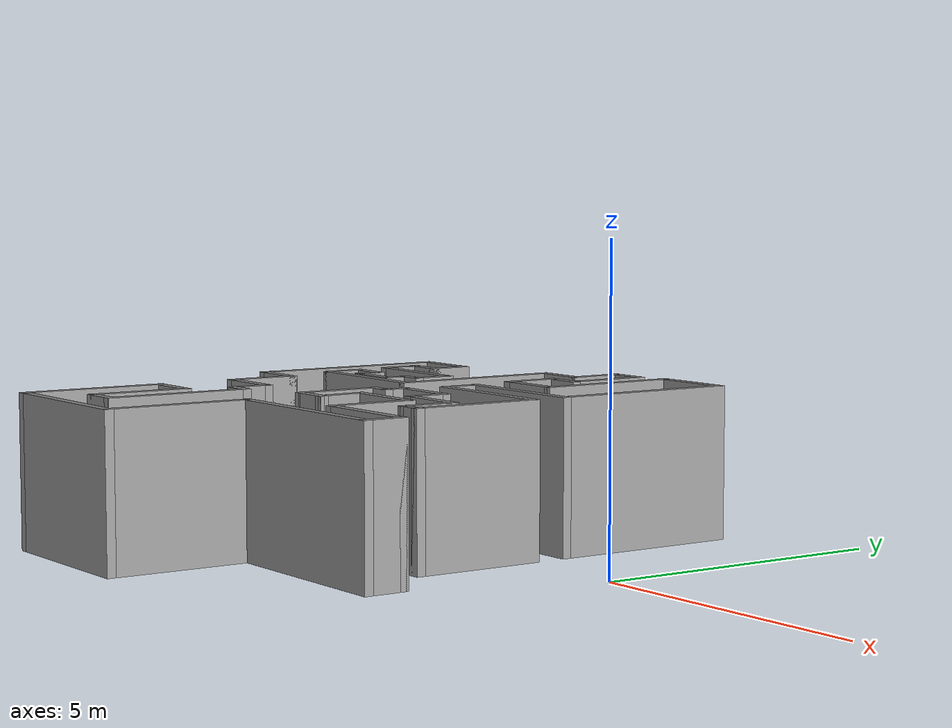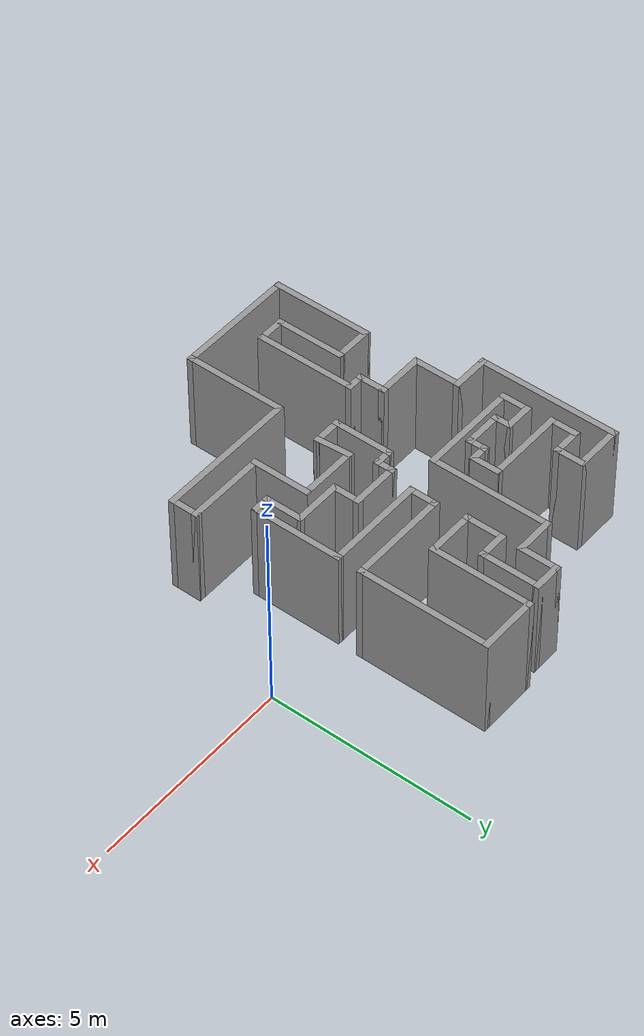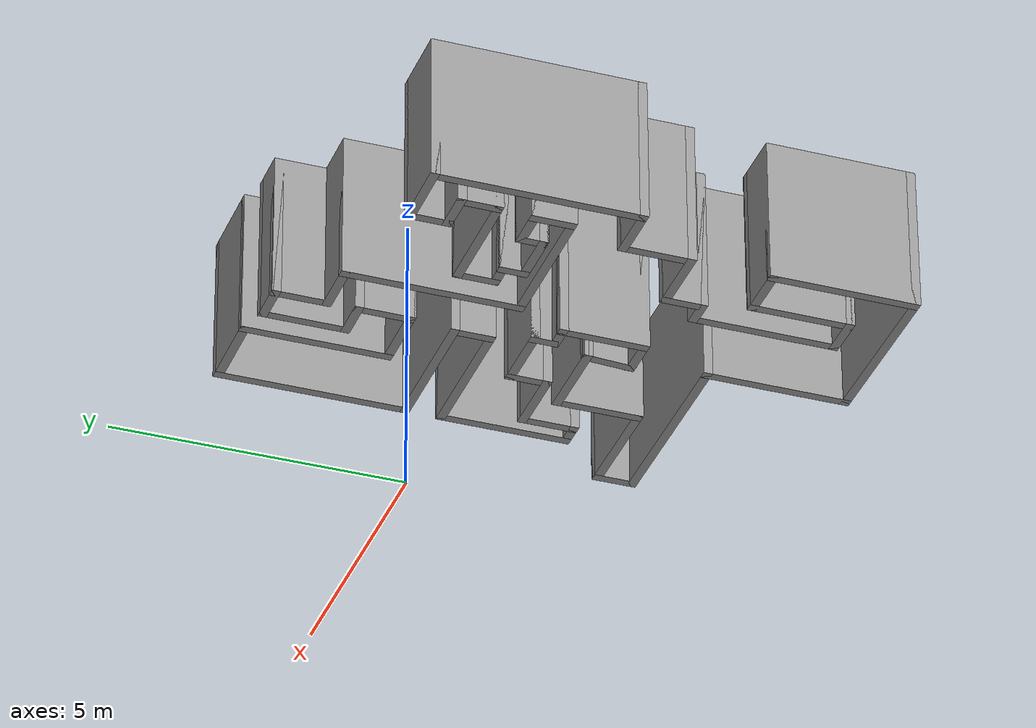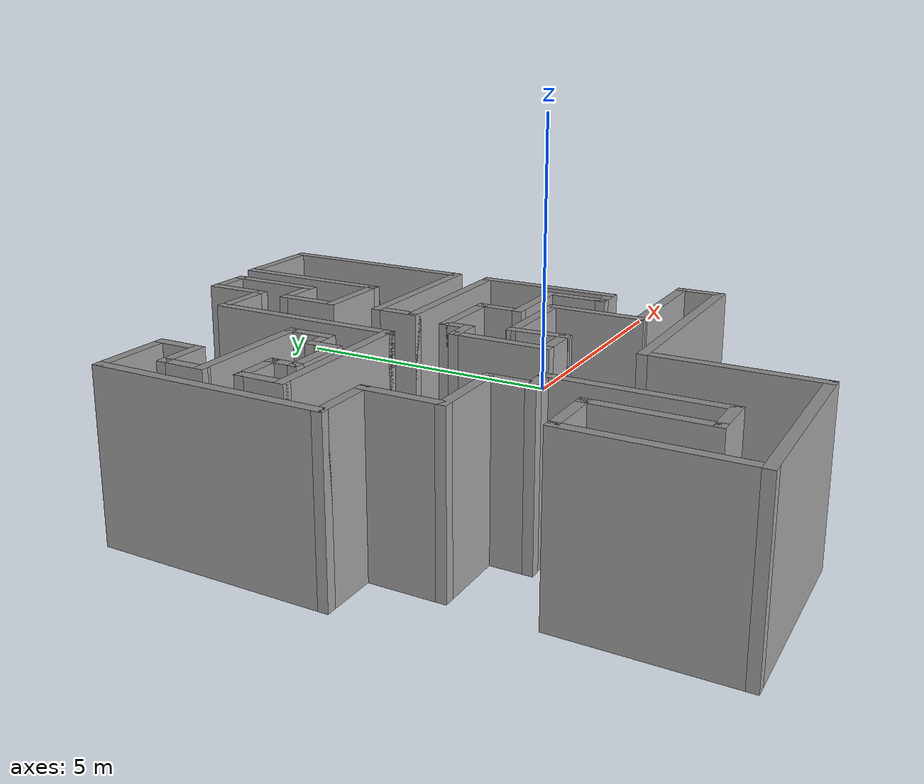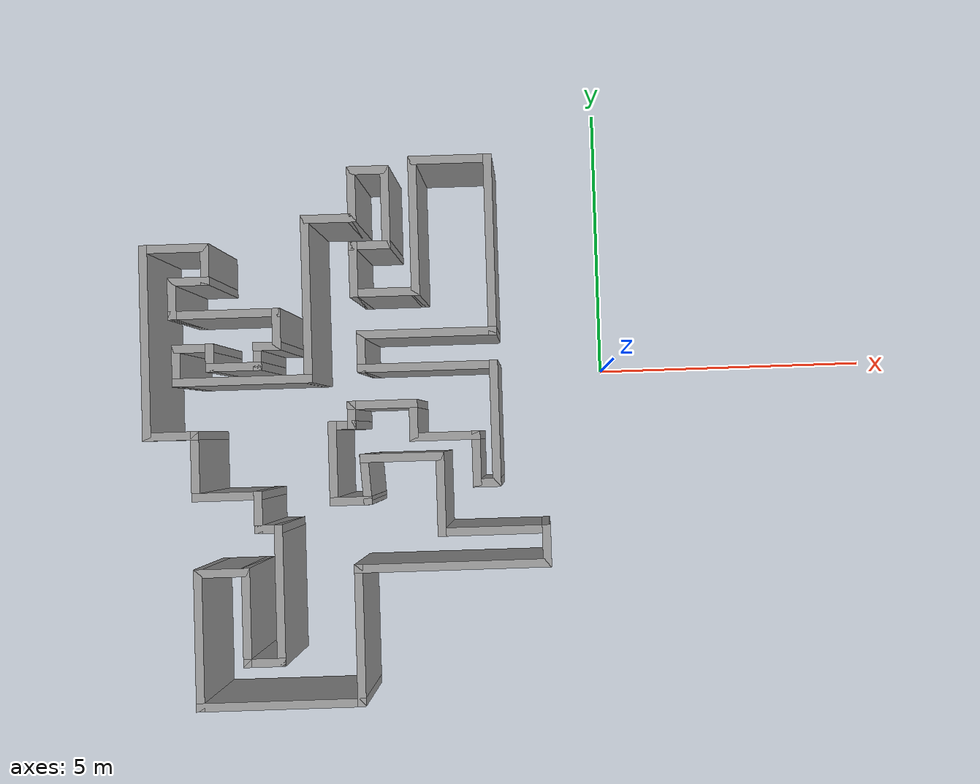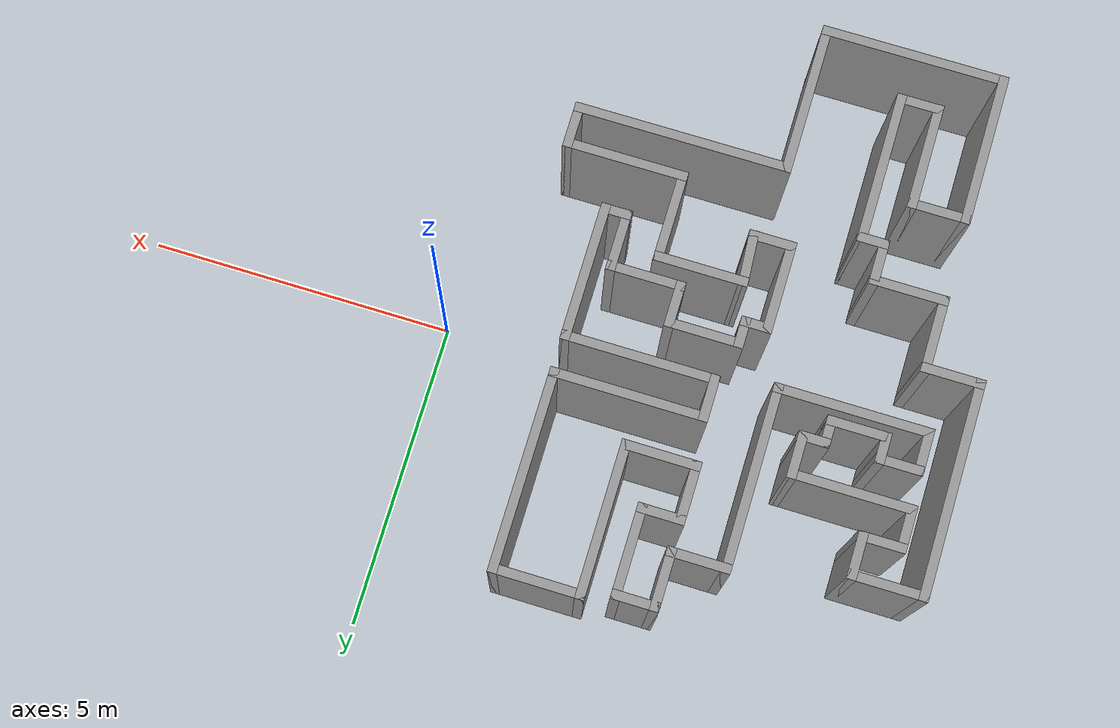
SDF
<?xml version='1.0'?>
<sdf version='1.6'>
  <model name='maze'>
    <pose frame=''>-4.685 -1.01 0 0 -0 0</pose>
    <link name='Wall_0'>
      <collision name='Wall_0_Collision'>
        <geometry>
          <box>
            <size>1.5 0.15 2.5</size>
          </box>
        </geometry>
        <pose frame=''>0 0 1.25 0 -0 0</pose>
      </collision>
      <visual name='Wall_0_Visual'>
        <pose frame=''>0 0 1.25 0 -0 0</pose>
        <geometry>
          <box>
            <size>1.5 0.15 2.5</size>
          </box>
        </geometry>
        <material>
          <script>
            <uri>file://media/materials/scripts/gazebo.material</uri>
            <name>Gazebo/Grey</name>
          </script>
          <ambient>1 1 1 1</ambient>
        </material>
        <meta>
          <layer>0</layer>
        </meta>
      </visual>
      <pose frame=''>1 -0.5 0 0 -0 0</pose>
    </link>
    <link name='Wall_1'>
      <collision name='Wall_1_Collision'>
        <geometry>
          <box>
            <size>1.5 0.15 2.5</size>
          </box>
        </geometry>
        <pose frame=''>0 0 1.25 0 -0 0</pose>
      </collision>
      <visual name='Wall_1_Visual'>
        <pose frame=''>0 0 1.25 0 -0 0</pose>
        <geometry>
          <box>
            <size>1.5 0.15 2.5</size>
          </box>
        </geometry>
        <material>
          <script>
            <uri>file://media/materials/scripts/gazebo.material</uri>
            <name>Gazebo/Grey</name>
          </script>
          <ambient>1 1 1 1</ambient>
        </material>
        <meta>
          <layer>0</layer>
        </meta>
      </visual>
      <pose frame=''>1.675 -1.175 0 0 -0 -1.5708</pose>
    </link>
    <link name='Wall_10'>
      <collision name='Wall_10_Collision'>
        <geometry>
          <box>
            <size>0.75 0.15 2.5</size>
          </box>
        </geometry>
        <pose frame=''>0 0 1.25 0 -0 0</pose>
      </collision>
      <visual name='Wall_10_Visual'>
        <pose frame=''>0 0 1.25 0 -0 0</pose>
        <geometry>
          <box>
            <size>0.75 0.15 2.5</size>
          </box>
        </geometry>
        <material>
          <script>
            <uri>file://media/materials/scripts/gazebo.material</uri>
            <name>Gazebo/Grey</name>
          </script>
          <ambient>1 1 1 1</ambient>
        </material>
        <meta>
          <layer>0</layer>
        </meta>
      </visual>
      <pose frame=''>-1.525 -4.05 0 0 -0 0</pose>
    </link>
    <link name='Wall_11'>
      <collision name='Wall_11_Collision'>
        <geometry>
          <box>
            <size>2.5 0.15 2.5</size>
          </box>
        </geometry>
        <pose frame=''>0 0 1.25 0 -0 0</pose>
      </collision>
      <visual name='Wall_11_Visual'>
        <pose frame=''>0 0 1.25 0 -0 0</pose>
        <geometry>
          <box>
            <size>2.5 0.15 2.5</size>
          </box>
        </geometry>
        <material>
          <script>
            <uri>file://media/materials/scripts/gazebo.material</uri>
            <name>Gazebo/Grey</name>
          </script>
          <ambient>1 1 1 1</ambient>
        </material>
        <meta>
          <layer>0</layer>
        </meta>
      </visual>
      <pose frame=''>-1.225 -2.875 0 0 -0 1.5708</pose>
    </link>
    <link name='Wall_12'>
      <collision name='Wall_12_Collision'>
        <geometry>
          <box>
            <size>0.5 0.15 2.5</size>
          </box>
        </geometry>
        <pose frame=''>0 0 1.25 0 -0 0</pose>
      </collision>
      <visual name='Wall_12_Visual'>
        <pose frame=''>0 0 1.25 0 -0 0</pose>
        <geometry>
          <box>
            <size>0.5 0.15 2.5</size>
          </box>
        </geometry>
        <material>
          <script>
            <uri>file://media/materials/scripts/gazebo.material</uri>
            <name>Gazebo/Grey</name>
          </script>
          <ambient>1 1 1 1</ambient>
        </material>
        <meta>
          <layer>0</layer>
        </meta>
      </visual>
      <pose frame=''>-1.4 -1.7 0 0 -0 3.14159</pose>
    </link>
    <link name='Wall_13'>
      <collision name='Wall_13_Collision'>
        <geometry>
          <box>
            <size>0.75 0.15 2.5</size>
          </box>
        </geometry>
        <pose frame=''>0 0 1.25 0 -0 0</pose>
      </collision>
      <visual name='Wall_13_Visual'>
        <pose frame=''>0 0 1.25 0 -0 0</pose>
        <geometry>
          <box>
            <size>0.75 0.15 2.5</size>
          </box>
        </geometry>
        <material>
          <script>
            <uri>file://media/materials/scripts/gazebo.material</uri>
            <name>Gazebo/Grey</name>
          </script>
          <ambient>1 1 1 1</ambient>
        </material>
        <meta>
          <layer>0</layer>
        </meta>
      </visual>
      <pose frame=''>-1.575 -1.4 0 0 -0 1.5708</pose>
    </link>
    <link name='Wall_14'>
      <collision name='Wall_14_Collision'>
        <geometry>
          <box>
            <size>1.25 0.15 2.5</size>
          </box>
        </geometry>
        <pose frame=''>0 0 1.25 0 -0 0</pose>
      </collision>
      <visual name='Wall_14_Visual'>
        <pose frame=''>0 0 1.25 0 -0 0</pose>
        <geometry>
          <box>
            <size>1.25 0.15 2.5</size>
          </box>
        </geometry>
        <material>
          <script>
            <uri>file://media/materials/scripts/gazebo.material</uri>
            <name>Gazebo/Grey</name>
          </script>
          <ambient>1 1 1 1</ambient>
        </material>
        <meta>
          <layer>0</layer>
        </meta>
      </visual>
      <pose frame=''>-2.125 -1.1 0 0 -0 3.14159</pose>
    </link>
    <link name='Wall_15'>
      <collision name='Wall_15_Collision'>
        <geometry>
          <box>
            <size>1.25 0.15 2.5</size>
          </box>
        </geometry>
        <pose frame=''>0 0 1.25 0 -0 0</pose>
      </collision>
      <visual name='Wall_15_Visual'>
        <pose frame=''>0 0 1.25 0 -0 0</pose>
        <geometry>
          <box>
            <size>1.25 0.15 2.5</size>
          </box>
        </geometry>
        <material>
          <script>
            <uri>file://media/materials/scripts/gazebo.material</uri>
            <name>Gazebo/Grey</name>
          </script>
          <ambient>1 1 1 1</ambient>
        </material>
        <meta>
          <layer>0</layer>
        </meta>
      </visual>
      <pose frame=''>-2.675 -0.55 0 0 -0 1.5708</pose>
    </link>
    <link name='Wall_16'>
      <collision name='Wall_16_Collision'>
        <geometry>
          <box>
            <size>1 0.15 2.5</size>
          </box>
        </geometry>
        <pose frame=''>0 0 1.25 0 -0 0</pose>
      </collision>
      <visual name='Wall_16_Visual'>
        <pose frame=''>0 0 1.25 0 -0 0</pose>
        <geometry>
          <box>
            <size>1 0.15 2.5</size>
          </box>
        </geometry>
        <material>
          <script>
            <uri>file://media/materials/scripts/gazebo.material</uri>
            <name>Gazebo/Grey</name>
          </script>
          <ambient>1 1 1 1</ambient>
        </material>
        <meta>
          <layer>0</layer>
        </meta>
      </visual>
      <pose frame=''>-3.1 0 0 0 -0 3.14159</pose>
    </link>
    <link name='Wall_17'>
      <collision name='Wall_17_Collision'>
        <geometry>
          <box>
            <size>3.5 0.15 2.5</size>
          </box>
        </geometry>
        <pose frame=''>0 0 1.25 0 -0 0</pose>
      </collision>
      <visual name='Wall_17_Visual'>
        <pose frame=''>0 0 1.25 0 -0 0</pose>
        <geometry>
          <box>
            <size>3.5 0.15 2.5</size>
          </box>
        </geometry>
        <material>
          <script>
            <uri>file://media/materials/scripts/gazebo.material</uri>
            <name>Gazebo/Grey</name>
          </script>
          <ambient>1 1 1 1</ambient>
        </material>
        <meta>
          <layer>0</layer>
        </meta>
      </visual>
      <pose frame=''>-3.525 1.675 0 0 -0 1.5708</pose>
    </link>
    <link name='Wall_18'>
      <collision name='Wall_18_Collision'>
        <geometry>
          <box>
            <size>1.25 0.15 2.5</size>
          </box>
        </geometry>
        <pose frame=''>0 0 1.25 0 -0 0</pose>
      </collision>
      <visual name='Wall_18_Visual'>
        <pose frame=''>0 0 1.25 0 -0 0</pose>
        <geometry>
          <box>
            <size>1.25 0.15 2.5</size>
          </box>
        </geometry>
        <material>
          <script>
            <uri>file://media/materials/scripts/gazebo.material</uri>
            <name>Gazebo/Grey</name>
          </script>
          <ambient>1 1 1 1</ambient>
        </material>
        <meta>
          <layer>0</layer>
        </meta>
      </visual>
      <pose frame=''>-2.975 3.35 0 0 -0 0</pose>
    </link>
    <link name='Wall_19'>
      <collision name='Wall_19_Collision'>
        <geometry>
          <box>
            <size>0.75 0.15 2.5</size>
          </box>
        </geometry>
        <pose frame=''>0 0 1.25 0 -0 0</pose>
      </collision>
      <visual name='Wall_19_Visual'>
        <pose frame=''>0 0 1.25 0 -0 0</pose>
        <geometry>
          <box>
            <size>0.75 0.15 2.5</size>
          </box>
        </geometry>
        <material>
          <script>
            <uri>file://media/materials/scripts/gazebo.material</uri>
            <name>Gazebo/Grey</name>
          </script>
          <ambient>1 1 1 1</ambient>
        </material>
        <meta>
          <layer>0</layer>
        </meta>
      </visual>
      <pose frame=''>-2.425 3.05 0 0 -0 -1.5708</pose>
    </link>
    <link name='Wall_2'>
      <collision name='Wall_2_Collision'>
        <geometry>
          <box>
            <size>2 0.15 2.5</size>
          </box>
        </geometry>
        <pose frame=''>0 0 1.25 0 -0 0</pose>
      </collision>
      <visual name='Wall_2_Visual'>
        <pose frame=''>0 0 1.25 0 -0 0</pose>
        <geometry>
          <box>
            <size>2 0.15 2.5</size>
          </box>
        </geometry>
        <material>
          <script>
            <uri>file://media/materials/scripts/gazebo.material</uri>
            <name>Gazebo/Grey</name>
          </script>
          <ambient>1 1 1 1</ambient>
        </material>
        <meta>
          <layer>0</layer>
        </meta>
      </visual>
      <pose frame=''>2.6 -1.85 0 0 -0 0</pose>
    </link>
    <link name='Wall_20'>
      <collision name='Wall_20_Collision'>
        <geometry>
          <box>
            <size>0.75 0.15 2.5</size>
          </box>
        </geometry>
        <pose frame=''>0 0 1.25 0 -0 0</pose>
      </collision>
      <visual name='Wall_20_Visual'>
        <pose frame=''>0 0 1.25 0 -0 0</pose>
        <geometry>
          <box>
            <size>0.75 0.15 2.5</size>
          </box>
        </geometry>
        <material>
          <script>
            <uri>file://media/materials/scripts/gazebo.material</uri>
            <name>Gazebo/Grey</name>
          </script>
          <ambient>1 1 1 1</ambient>
        </material>
        <meta>
          <layer>0</layer>
        </meta>
      </visual>
      <pose frame=''>-2.725 2.75 0 0 -0 3.14159</pose>
    </link>
    <link name='Wall_21'>
      <collision name='Wall_21_Collision'>
        <geometry>
          <box>
            <size>0.75 0.15 2.5</size>
          </box>
        </geometry>
        <pose frame=''>0 0 1.25 0 -0 0</pose>
      </collision>
      <visual name='Wall_21_Visual'>
        <pose frame=''>0 0 1.25 0 -0 0</pose>
        <geometry>
          <box>
            <size>0.75 0.15 2.5</size>
          </box>
        </geometry>
        <material>
          <script>
            <uri>file://media/materials/scripts/gazebo.material</uri>
            <name>Gazebo/Grey</name>
          </script>
          <ambient>1 1 1 1</ambient>
        </material>
        <meta>
          <layer>0</layer>
        </meta>
      </visual>
      <pose frame=''>-3.025 2.45 0 0 -0 -1.5708</pose>
    </link>
    <link name='Wall_22'>
      <collision name='Wall_22_Collision'>
        <geometry>
          <box>
            <size>2 0.15 2.5</size>
          </box>
        </geometry>
        <pose frame=''>0 0 1.25 0 -0 0</pose>
      </collision>
      <visual name='Wall_22_Visual'>
        <pose frame=''>0 0 1.25 0 -0 0</pose>
        <geometry>
          <box>
            <size>2 0.15 2.5</size>
          </box>
        </geometry>
        <material>
          <script>
            <uri>file://media/materials/scripts/gazebo.material</uri>
            <name>Gazebo/Grey</name>
          </script>
          <ambient>1 1 1 1</ambient>
        </material>
        <meta>
          <layer>0</layer>
        </meta>
      </visual>
      <pose frame=''>-2.1 2.15 0 0 -0 0</pose>
    </link>
    <link name='Wall_23'>
      <collision name='Wall_23_Collision'>
        <geometry>
          <box>
            <size>0.75 0.15 2.5</size>
          </box>
        </geometry>
        <pose frame=''>0 0 1.25 0 -0 0</pose>
      </collision>
      <visual name='Wall_23_Visual'>
        <pose frame=''>0 0 1.25 0 -0 0</pose>
        <geometry>
          <box>
            <size>0.75 0.15 2.5</size>
          </box>
        </geometry>
        <material>
          <script>
            <uri>file://media/materials/scripts/gazebo.material</uri>
            <name>Gazebo/Grey</name>
          </script>
          <ambient>1 1 1 1</ambient>
        </material>
        <meta>
          <layer>0</layer>
        </meta>
      </visual>
      <pose frame=''>-1.175 1.85 0 0 -0 -1.5708</pose>
    </link>
    <link name='Wall_24'>
      <collision name='Wall_24_Collision'>
        <geometry>
          <box>
            <size>0.5 0.15 2.5</size>
          </box>
        </geometry>
        <pose frame=''>0 0 1.25 0 -0 0</pose>
      </collision>
      <visual name='Wall_24_Visual'>
        <pose frame=''>0 0 1.25 0 -0 0</pose>
        <geometry>
          <box>
            <size>0.5 0.15 2.5</size>
          </box>
        </geometry>
        <material>
          <script>
            <uri>file://media/materials/scripts/gazebo.material</uri>
            <name>Gazebo/Grey</name>
          </script>
          <ambient>1 1 1 1</ambient>
        </material>
        <meta>
          <layer>0</layer>
        </meta>
      </visual>
      <pose frame=''>-1.35 1.55 0 0 -0 3.14159</pose>
    </link>
    <link name='Wall_25'>
      <collision name='Wall_25_Collision'>
        <geometry>
          <box>
            <size>0.5 0.15 2.5</size>
          </box>
        </geometry>
        <pose frame=''>0 0 1.25 0 -0 0</pose>
      </collision>
      <visual name='Wall_25_Visual'>
        <pose frame=''>0 0 1.25 0 -0 0</pose>
        <geometry>
          <box>
            <size>0.5 0.15 2.5</size>
          </box>
        </geometry>
        <material>
          <script>
            <uri>file://media/materials/scripts/gazebo.material</uri>
            <name>Gazebo/Grey</name>
          </script>
          <ambient>1 1 1 1</ambient>
        </material>
        <meta>
          <layer>0</layer>
        </meta>
      </visual>
      <pose frame=''>-1.525 1.375 0 0 -0 -1.5708</pose>
    </link>
    <link name='Wall_26'>
      <collision name='Wall_26_Collision'>
        <geometry>
          <box>
            <size>1 0.15 2.5</size>
          </box>
        </geometry>
        <pose frame=''>0 0 1.25 0 -0 0</pose>
      </collision>
      <visual name='Wall_26_Visual'>
        <pose frame=''>0 0 1.25 0 -0 0</pose>
        <geometry>
          <box>
            <size>1 0.15 2.5</size>
          </box>
        </geometry>
        <material>
          <script>
            <uri>file://media/materials/scripts/gazebo.material</uri>
            <name>Gazebo/Grey</name>
          </script>
          <ambient>1 1 1 1</ambient>
        </material>
        <meta>
          <layer>0</layer>
        </meta>
      </visual>
      <pose frame=''>-1.95 1.2 0 0 -0 3.14159</pose>
    </link>
    <link name='Wall_27'>
      <collision name='Wall_27_Collision'>
        <geometry>
          <box>
            <size>0.5 0.15 2.5</size>
          </box>
        </geometry>
        <pose frame=''>0 0 1.25 0 -0 0</pose>
      </collision>
      <visual name='Wall_27_Visual'>
        <pose frame=''>0 0 1.25 0 -0 0</pose>
        <geometry>
          <box>
            <size>0.5 0.15 2.5</size>
          </box>
        </geometry>
        <material>
          <script>
            <uri>file://media/materials/scripts/gazebo.material</uri>
            <name>Gazebo/Grey</name>
          </script>
          <ambient>1 1 1 1</ambient>
        </material>
        <meta>
          <layer>0</layer>
        </meta>
      </visual>
      <pose frame=''>-2.375 1.375 0 0 -0 1.5708</pose>
    </link>
    <link name='Wall_28'>
      <collision name='Wall_28_Collision'>
        <geometry>
          <box>
            <size>0.75 0.15 2.5</size>
          </box>
        </geometry>
        <pose frame=''>0 0 1.25 0 -0 0</pose>
      </collision>
      <visual name='Wall_28_Visual'>
        <pose frame=''>0 0 1.25 0 -0 0</pose>
        <geometry>
          <box>
            <size>0.75 0.15 2.5</size>
          </box>
        </geometry>
        <material>
          <script>
            <uri>file://media/materials/scripts/gazebo.material</uri>
            <name>Gazebo/Grey</name>
          </script>
          <ambient>1 1 1 1</ambient>
        </material>
        <meta>
          <layer>0</layer>
        </meta>
      </visual>
      <pose frame=''>-2.675 1.55 0 0 -0 3.14159</pose>
    </link>
    <link name='Wall_29'>
      <collision name='Wall_29_Collision'>
        <geometry>
          <box>
            <size>0.75 0.15 2.5</size>
          </box>
        </geometry>
        <pose frame=''>0 0 1.25 0 -0 0</pose>
      </collision>
      <visual name='Wall_29_Visual'>
        <pose frame=''>0 0 1.25 0 -0 0</pose>
        <geometry>
          <box>
            <size>0.75 0.15 2.5</size>
          </box>
        </geometry>
        <material>
          <script>
            <uri>file://media/materials/scripts/gazebo.material</uri>
            <name>Gazebo/Grey</name>
          </script>
          <ambient>1 1 1 1</ambient>
        </material>
        <meta>
          <layer>0</layer>
        </meta>
      </visual>
      <pose frame=''>-2.975 1.25 0 0 -0 -1.5708</pose>
    </link>
    <link name='Wall_3'>
      <collision name='Wall_3_Collision'>
        <geometry>
          <box>
            <size>0.75 0.15 2.5</size>
          </box>
        </geometry>
        <pose frame=''>0 0 1.25 0 -0 0</pose>
      </collision>
      <visual name='Wall_3_Visual'>
        <pose frame=''>0 0 1.25 0 -0 0</pose>
        <geometry>
          <box>
            <size>0.75 0.15 2.5</size>
          </box>
        </geometry>
        <material>
          <script>
            <uri>file://media/materials/scripts/gazebo.material</uri>
            <name>Gazebo/Grey</name>
          </script>
          <ambient>1 1 1 1</ambient>
        </material>
        <meta>
          <layer>0</layer>
        </meta>
      </visual>
      <pose frame=''>3.525 -2.15 0 0 -0 -1.5708</pose>
    </link>
    <link name='Wall_30'>
      <collision name='Wall_30_Collision'>
        <geometry>
          <box>
            <size>2.5 0.15 2.5</size>
          </box>
        </geometry>
        <pose frame=''>0 0 1.25 0 -0 0</pose>
      </collision>
      <visual name='Wall_30_Visual'>
        <pose frame=''>0 0 1.25 0 -0 0</pose>
        <geometry>
          <box>
            <size>2.5 0.15 2.5</size>
          </box>
        </geometry>
        <material>
          <script>
            <uri>file://media/materials/scripts/gazebo.material</uri>
            <name>Gazebo/Grey</name>
          </script>
          <ambient>1 1 1 1</ambient>
        </material>
        <meta>
          <layer>0</layer>
        </meta>
      </visual>
      <pose frame=''>-1.8 0.95 0 0 -0 0</pose>
    </link>
    <link name='Wall_31'>
      <collision name='Wall_31_Collision'>
        <geometry>
          <box>
            <size>3 0.15 2.5</size>
          </box>
        </geometry>
        <pose frame=''>0 0 1.25 0 -0 0</pose>
      </collision>
      <visual name='Wall_31_Visual'>
        <pose frame=''>0 0 1.25 0 -0 0</pose>
        <geometry>
          <box>
            <size>3 0.15 2.5</size>
          </box>
        </geometry>
        <material>
          <script>
            <uri>file://media/materials/scripts/gazebo.material</uri>
            <name>Gazebo/Grey</name>
          </script>
          <ambient>1 1 1 1</ambient>
        </material>
        <meta>
          <layer>0</layer>
        </meta>
      </visual>
      <pose frame=''>-0.625 2.375 0 0 -0 1.5708</pose>
    </link>
    <link name='Wall_32'>
      <collision name='Wall_32_Collision'>
        <geometry>
          <box>
            <size>1 0.15 2.5</size>
          </box>
        </geometry>
        <pose frame=''>0 0 1.25 0 -0 0</pose>
      </collision>
      <visual name='Wall_32_Visual'>
        <pose frame=''>0 0 1.25 0 -0 0</pose>
        <geometry>
          <box>
            <size>1 0.15 2.5</size>
          </box>
        </geometry>
        <material>
          <script>
            <uri>file://media/materials/scripts/gazebo.material</uri>
            <name>Gazebo/Grey</name>
          </script>
          <ambient>1 1 1 1</ambient>
        </material>
        <meta>
          <layer>0</layer>
        </meta>
      </visual>
      <pose frame=''>-0.2 3.8 0 0 -0 0</pose>
    </link>
    <link name='Wall_33'>
      <collision name='Wall_33_Collision'>
        <geometry>
          <box>
            <size>1 0.15 2.5</size>
          </box>
        </geometry>
        <pose frame=''>0 0 1.25 0 -0 0</pose>
      </collision>
      <visual name='Wall_33_Visual'>
        <pose frame=''>0 0 1.25 0 -0 0</pose>
        <geometry>
          <box>
            <size>1 0.15 2.5</size>
          </box>
        </geometry>
        <material>
          <script>
            <uri>file://media/materials/scripts/gazebo.material</uri>
            <name>Gazebo/Grey</name>
          </script>
          <ambient>1 1 1 1</ambient>
        </material>
        <meta>
          <layer>0</layer>
        </meta>
      </visual>
      <pose frame=''>0.225 4.225 0 0 -0 1.5708</pose>
    </link>
    <link name='Wall_34'>
      <collision name='Wall_34_Collision'>
        <geometry>
          <box>
            <size>0.75 0.15 2.5</size>
          </box>
        </geometry>
        <pose frame=''>0 0 1.25 0 -0 0</pose>
      </collision>
      <visual name='Wall_34_Visual'>
        <pose frame=''>0 0 1.25 0 -0 0</pose>
        <geometry>
          <box>
            <size>0.75 0.15 2.5</size>
          </box>
        </geometry>
        <material>
          <script>
            <uri>file://media/materials/scripts/gazebo.material</uri>
            <name>Gazebo/Grey</name>
          </script>
          <ambient>1 1 1 1</ambient>
        </material>
        <meta>
          <layer>0</layer>
        </meta>
      </visual>
      <pose frame=''>0.525 4.65 0 0 -0 0</pose>
    </link>
    <link name='Wall_35'>
      <collision name='Wall_35_Collision'>
        <geometry>
          <box>
            <size>1.5 0.15 2.5</size>
          </box>
        </geometry>
        <pose frame=''>0 0 1.25 0 -0 0</pose>
      </collision>
      <visual name='Wall_35_Visual'>
        <pose frame=''>0 0 1.25 0 -0 0</pose>
        <geometry>
          <box>
            <size>1.5 0.15 2.5</size>
          </box>
        </geometry>
        <material>
          <script>
            <uri>file://media/materials/scripts/gazebo.material</uri>
            <name>Gazebo/Grey</name>
          </script>
          <ambient>1 1 1 1</ambient>
        </material>
        <meta>
          <layer>0</layer>
        </meta>
      </visual>
      <pose frame=''>0.825 3.975 0 0 -0 -1.5708</pose>
    </link>
    <link name='Wall_36'>
      <collision name='Wall_36_Collision'>
        <geometry>
          <box>
            <size>0.75 0.15 2.5</size>
          </box>
        </geometry>
        <pose frame=''>0 0 1.25 0 -0 0</pose>
      </collision>
      <visual name='Wall_36_Visual'>
        <pose frame=''>0 0 1.25 0 -0 0</pose>
        <geometry>
          <box>
            <size>0.75 0.15 2.5</size>
          </box>
        </geometry>
        <material>
          <script>
            <uri>file://media/materials/scripts/gazebo.material</uri>
            <name>Gazebo/Grey</name>
          </script>
          <ambient>1 1 1 1</ambient>
        </material>
        <meta>
          <layer>0</layer>
        </meta>
      </visual>
      <pose frame=''>0.525 3.3 0 0 -0 3.14159</pose>
    </link>
    <link name='Wall_37'>
      <collision name='Wall_37_Collision'>
        <geometry>
          <box>
            <size>1 0.15 2.5</size>
          </box>
        </geometry>
        <pose frame=''>0 0 1.25 0 -0 0</pose>
      </collision>
      <visual name='Wall_37_Visual'>
        <pose frame=''>0 0 1.25 0 -0 0</pose>
        <geometry>
          <box>
            <size>1 0.15 2.5</size>
          </box>
        </geometry>
        <material>
          <script>
            <uri>file://media/materials/scripts/gazebo.material</uri>
            <name>Gazebo/Grey</name>
          </script>
          <ambient>1 1 1 1</ambient>
        </material>
        <meta>
          <layer>0</layer>
        </meta>
      </visual>
      <pose frame=''>0.225 2.875 0 0 -0 -1.5708</pose>
    </link>
    <link name='Wall_38'>
      <collision name='Wall_38_Collision'>
        <geometry>
          <box>
            <size>1.25 0.15 2.5</size>
          </box>
        </geometry>
        <pose frame=''>0 0 1.25 0 -0 0</pose>
      </collision>
      <visual name='Wall_38_Visual'>
        <pose frame=''>0 0 1.25 0 -0 0</pose>
        <geometry>
          <box>
            <size>1.25 0.15 2.5</size>
          </box>
        </geometry>
        <material>
          <script>
            <uri>file://media/materials/scripts/gazebo.material</uri>
            <name>Gazebo/Grey</name>
          </script>
          <ambient>1 1 1 1</ambient>
        </material>
        <meta>
          <layer>0</layer>
        </meta>
      </visual>
      <pose frame=''>0.775 2.45 0 0 -0 0</pose>
    </link>
    <link name='Wall_39'>
      <collision name='Wall_39_Collision'>
        <geometry>
          <box>
            <size>2.5 0.15 2.5</size>
          </box>
        </geometry>
        <pose frame=''>0 0 1.25 0 -0 0</pose>
      </collision>
      <visual name='Wall_39_Visual'>
        <pose frame=''>0 0 1.25 0 -0 0</pose>
        <geometry>
          <box>
            <size>2.5 0.15 2.5</size>
          </box>
        </geometry>
        <material>
          <script>
            <uri>file://media/materials/scripts/gazebo.material</uri>
            <name>Gazebo/Grey</name>
          </script>
          <ambient>1 1 1 1</ambient>
        </material>
        <meta>
          <layer>0</layer>
        </meta>
      </visual>
      <pose frame=''>1.325 3.625 0 0 -0 1.5708</pose>
    </link>
    <link name='Wall_4'>
      <collision name='Wall_4_Collision'>
        <geometry>
          <box>
            <size>3.5 0.15 2.5</size>
          </box>
        </geometry>
        <pose frame=''>0 0 1.25 0 -0 0</pose>
      </collision>
      <visual name='Wall_4_Visual'>
        <pose frame=''>0 0 1.25 0 -0 0</pose>
        <geometry>
          <box>
            <size>3.5 0.15 2.5</size>
          </box>
        </geometry>
        <material>
          <script>
            <uri>file://media/materials/scripts/gazebo.material</uri>
            <name>Gazebo/Grey</name>
          </script>
          <ambient>1 1 1 1</ambient>
        </material>
        <meta>
          <layer>0</layer>
        </meta>
      </visual>
      <pose frame=''>1.85 -2.45 0 0 -0 3.14159</pose>
    </link>
    <link name='Wall_40'>
      <collision name='Wall_40_Collision'>
        <geometry>
          <box>
            <size>1.5 0.15 2.5</size>
          </box>
        </geometry>
        <pose frame=''>0 0 1.25 0 -0 0</pose>
      </collision>
      <visual name='Wall_40_Visual'>
        <pose frame=''>0 0 1.25 0 -0 0</pose>
        <geometry>
          <box>
            <size>1.5 0.15 2.5</size>
          </box>
        </geometry>
        <material>
          <script>
            <uri>file://media/materials/scripts/gazebo.material</uri>
            <name>Gazebo/Grey</name>
          </script>
          <ambient>1 1 1 1</ambient>
        </material>
        <meta>
          <layer>0</layer>
        </meta>
      </visual>
      <pose frame=''>2 4.8 0 0 -0 0</pose>
    </link>
    <link name='Wall_41'>
      <collision name='Wall_41_Collision'>
        <geometry>
          <box>
            <size>3.25 0.15 2.5</size>
          </box>
        </geometry>
        <pose frame=''>0 0 1.25 0 -0 0</pose>
      </collision>
      <visual name='Wall_41_Visual'>
        <pose frame=''>0 0 1.25 0 -0 0</pose>
        <geometry>
          <box>
            <size>3.25 0.15 2.5</size>
          </box>
        </geometry>
        <material>
          <script>
            <uri>file://media/materials/scripts/gazebo.material</uri>
            <name>Gazebo/Grey</name>
          </script>
          <ambient>1 1 1 1</ambient>
        </material>
        <meta>
          <layer>0</layer>
        </meta>
      </visual>
      <pose frame=''>2.675 3.25 0 0 -0 -1.5708</pose>
    </link>
    <link name='Wall_42'>
      <collision name='Wall_42_Collision'>
        <geometry>
          <box>
            <size>2.5 0.15 2.5</size>
          </box>
        </geometry>
        <pose frame=''>0 0 1.25 0 -0 0</pose>
      </collision>
      <visual name='Wall_42_Visual'>
        <pose frame=''>0 0 1.25 0 -0 0</pose>
        <geometry>
          <box>
            <size>2.5 0.15 2.5</size>
          </box>
        </geometry>
        <material>
          <script>
            <uri>file://media/materials/scripts/gazebo.material</uri>
            <name>Gazebo/Grey</name>
          </script>
          <ambient>1 1 1 1</ambient>
        </material>
        <meta>
          <layer>0</layer>
        </meta>
      </visual>
      <pose frame=''>1.5 1.7 0 0 -0 3.14159</pose>
    </link>
    <link name='Wall_43'>
      <collision name='Wall_43_Collision'>
        <geometry>
          <box>
            <size>0.75 0.15 2.5</size>
          </box>
        </geometry>
        <pose frame=''>0 0 1.25 0 -0 0</pose>
      </collision>
      <visual name='Wall_43_Visual'>
        <pose frame=''>0 0 1.25 0 -0 0</pose>
        <geometry>
          <box>
            <size>0.75 0.15 2.5</size>
          </box>
        </geometry>
        <material>
          <script>
            <uri>file://media/materials/scripts/gazebo.material</uri>
            <name>Gazebo/Grey</name>
          </script>
          <ambient>1 1 1 1</ambient>
        </material>
        <meta>
          <layer>0</layer>
        </meta>
      </visual>
      <pose frame=''>0.325 1.4 0 0 -0 -1.5708</pose>
    </link>
    <link name='Wall_44'>
      <collision name='Wall_44_Collision'>
        <geometry>
          <box>
            <size>2.5 0.15 2.5</size>
          </box>
        </geometry>
        <pose frame=''>0 0 1.25 0 -0 0</pose>
      </collision>
      <visual name='Wall_44_Visual'>
        <pose frame=''>0 0 1.25 0 -0 0</pose>
        <geometry>
          <box>
            <size>2.5 0.15 2.5</size>
          </box>
        </geometry>
        <material>
          <script>
            <uri>file://media/materials/scripts/gazebo.material</uri>
            <name>Gazebo/Grey</name>
          </script>
          <ambient>1 1 1 1</ambient>
        </material>
        <meta>
          <layer>0</layer>
        </meta>
      </visual>
      <pose frame=''>1.5 1.1 0 0 -0 0</pose>
    </link>
    <link name='Wall_45'>
      <collision name='Wall_45_Collision'>
        <geometry>
          <box>
            <size>2.25 0.15 2.5</size>
          </box>
        </geometry>
        <pose frame=''>0 0 1.25 0 -0 0</pose>
      </collision>
      <visual name='Wall_45_Visual'>
        <pose frame=''>0 0 1.25 0 -0 0</pose>
        <geometry>
          <box>
            <size>2.25 0.15 2.5</size>
          </box>
        </geometry>
        <material>
          <script>
            <uri>file://media/materials/scripts/gazebo.material</uri>
            <name>Gazebo/Grey</name>
          </script>
          <ambient>1 1 1 1</ambient>
        </material>
        <meta>
          <layer>0</layer>
        </meta>
      </visual>
      <pose frame=''>2.675 0.05 0 0 -0 -1.5708</pose>
    </link>
    <link name='Wall_46'>
      <collision name='Wall_46_Collision'>
        <geometry>
          <box>
            <size>0.5 0.15 2.5</size>
          </box>
        </geometry>
        <pose frame=''>0 0 1.25 0 -0 0</pose>
      </collision>
      <visual name='Wall_46_Visual'>
        <pose frame=''>0 0 1.25 0 -0 0</pose>
        <geometry>
          <box>
            <size>0.5 0.15 2.5</size>
          </box>
        </geometry>
        <material>
          <script>
            <uri>file://media/materials/scripts/gazebo.material</uri>
            <name>Gazebo/Grey</name>
          </script>
          <ambient>1 1 1 1</ambient>
        </material>
        <meta>
          <layer>0</layer>
        </meta>
      </visual>
      <pose frame=''>2.5 -1 0 0 -0 3.14159</pose>
    </link>
    <link name='Wall_47'>
      <collision name='Wall_47_Collision'>
        <geometry>
          <box>
            <size>1 0.15 2.5</size>
          </box>
        </geometry>
        <pose frame=''>0 0 1.25 0 -0 0</pose>
      </collision>
      <visual name='Wall_47_Visual'>
        <pose frame=''>0 0 1.25 0 -0 0</pose>
        <geometry>
          <box>
            <size>1 0.15 2.5</size>
          </box>
        </geometry>
        <material>
          <script>
            <uri>file://media/materials/scripts/gazebo.material</uri>
            <name>Gazebo/Grey</name>
          </script>
          <ambient>1 1 1 1</ambient>
        </material>
        <meta>
          <layer>0</layer>
        </meta>
      </visual>
      <pose frame=''>2.325 -0.575 0 0 -0 1.5708</pose>
    </link>
    <link name='Wall_48'>
      <collision name='Wall_48_Collision'>
        <geometry>
          <box>
            <size>1.25 0.15 2.5</size>
          </box>
        </geometry>
        <pose frame=''>0 0 1.25 0 -0 0</pose>
      </collision>
      <visual name='Wall_48_Visual'>
        <pose frame=''>0 0 1.25 0 -0 0</pose>
        <geometry>
          <box>
            <size>1.25 0.15 2.5</size>
          </box>
        </geometry>
        <material>
          <script>
            <uri>file://media/materials/scripts/gazebo.material</uri>
            <name>Gazebo/Grey</name>
          </script>
          <ambient>1 1 1 1</ambient>
        </material>
        <meta>
          <layer>0</layer>
        </meta>
      </visual>
      <pose frame=''>1.775 -0.15 0 0 -0 3.14159</pose>
    </link>
    <link name='Wall_49'>
      <collision name='Wall_49_Collision'>
        <geometry>
          <box>
            <size>0.75 0.15 2.5</size>
          </box>
        </geometry>
        <pose frame=''>0 0 1.25 0 -0 0</pose>
      </collision>
      <visual name='Wall_49_Visual'>
        <pose frame=''>0 0 1.25 0 -0 0</pose>
        <geometry>
          <box>
            <size>0.75 0.15 2.5</size>
          </box>
        </geometry>
        <material>
          <script>
            <uri>file://media/materials/scripts/gazebo.material</uri>
            <name>Gazebo/Grey</name>
          </script>
          <ambient>1 1 1 1</ambient>
        </material>
        <meta>
          <layer>0</layer>
        </meta>
      </visual>
      <pose frame=''>1.225 0.15 0 0 -0 1.5708</pose>
    </link>
    <link name='Wall_5'>
      <collision name='Wall_5_Collision'>
        <geometry>
          <box>
            <size>2.5 0.15 2.5</size>
          </box>
        </geometry>
        <pose frame=''>0 0 1.25 0 -0 0</pose>
      </collision>
      <visual name='Wall_5_Visual'>
        <pose frame=''>0 0 1.25 0 -0 0</pose>
        <geometry>
          <box>
            <size>2.5 0.15 2.5</size>
          </box>
        </geometry>
        <material>
          <script>
            <uri>file://media/materials/scripts/gazebo.material</uri>
            <name>Gazebo/Grey</name>
          </script>
          <ambient>1 1 1 1</ambient>
        </material>
        <meta>
          <layer>0</layer>
        </meta>
      </visual>
      <pose frame=''>0.175 -3.625 0 0 -0 -1.5708</pose>
    </link>
    <link name='Wall_50'>
      <collision name='Wall_50_Collision'>
        <geometry>
          <box>
            <size>1.25 0.15 2.5</size>
          </box>
        </geometry>
        <pose frame=''>0 0 1.25 0 -0 0</pose>
      </collision>
      <visual name='Wall_50_Visual'>
        <pose frame=''>0 0 1.25 0 -0 0</pose>
        <geometry>
          <box>
            <size>1.25 0.15 2.5</size>
          </box>
        </geometry>
        <material>
          <script>
            <uri>file://media/materials/scripts/gazebo.material</uri>
            <name>Gazebo/Grey</name>
          </script>
          <ambient>1 1 1 1</ambient>
        </material>
        <meta>
          <layer>0</layer>
        </meta>
      </visual>
      <pose frame=''>0.675 0.45 0 0 -0 3.14159</pose>
    </link>
    <link name='Wall_51'>
      <collision name='Wall_51_Collision'>
        <geometry>
          <box>
            <size>0.5 0.15 2.5</size>
          </box>
        </geometry>
        <pose frame=''>0 0 1.25 0 -0 0</pose>
      </collision>
      <visual name='Wall_51_Visual'>
        <pose frame=''>0 0 1.25 0 -0 0</pose>
        <geometry>
          <box>
            <size>0.5 0.15 2.5</size>
          </box>
        </geometry>
        <material>
          <script>
            <uri>file://media/materials/scripts/gazebo.material</uri>
            <name>Gazebo/Grey</name>
          </script>
          <ambient>1 1 1 1</ambient>
        </material>
        <meta>
          <layer>0</layer>
        </meta>
      </visual>
      <pose frame=''>0.125 0.275 0 0 -0 -1.5708</pose>
    </link>
    <link name='Wall_52'>
      <collision name='Wall_52_Collision'>
        <geometry>
          <box>
            <size>0.5 0.15 2.5</size>
          </box>
        </geometry>
        <pose frame=''>0 0 1.25 0 -0 0</pose>
      </collision>
      <visual name='Wall_52_Visual'>
        <pose frame=''>0 0 1.25 0 -0 0</pose>
        <geometry>
          <box>
            <size>0.5 0.15 2.5</size>
          </box>
        </geometry>
        <material>
          <script>
            <uri>file://media/materials/scripts/gazebo.material</uri>
            <name>Gazebo/Grey</name>
          </script>
          <ambient>1 1 1 1</ambient>
        </material>
        <meta>
          <layer>0</layer>
        </meta>
      </visual>
      <pose frame=''>-0.05 0.1 0 0 -0 3.14159</pose>
    </link>
    <link name='Wall_53'>
      <collision name='Wall_53_Collision'>
        <geometry>
          <box>
            <size>1.5 0.15 2.5</size>
          </box>
        </geometry>
        <pose frame=''>0 0 1.25 0 -0 0</pose>
      </collision>
      <visual name='Wall_53_Visual'>
        <pose frame=''>0 0 1.25 0 -0 0</pose>
        <geometry>
          <box>
            <size>1.5 0.15 2.5</size>
          </box>
        </geometry>
        <material>
          <script>
            <uri>file://media/materials/scripts/gazebo.material</uri>
            <name>Gazebo/Grey</name>
          </script>
          <ambient>1 1 1 1</ambient>
        </material>
        <meta>
          <layer>0</layer>
        </meta>
      </visual>
      <pose frame=''>-0.225 -0.575 0 0 -0 -1.5708</pose>
    </link>
    <link name='Wall_54'>
      <collision name='Wall_54_Collision'>
        <geometry>
          <box>
            <size>0.75 0.15 2.5</size>
          </box>
        </geometry>
        <pose frame=''>0 0 1.25 0 -0 0</pose>
      </collision>
      <visual name='Wall_54_Visual'>
        <pose frame=''>0 0 1.25 0 -0 0</pose>
        <geometry>
          <box>
            <size>0.75 0.15 2.5</size>
          </box>
        </geometry>
        <material>
          <script>
            <uri>file://media/materials/scripts/gazebo.material</uri>
            <name>Gazebo/Grey</name>
          </script>
          <ambient>1 1 1 1</ambient>
        </material>
        <meta>
          <layer>0</layer>
        </meta>
      </visual>
      <pose frame=''>0.075 -1.25 0 0 -0 0</pose>
    </link>
    <link name='Wall_55'>
      <collision name='Wall_55_Collision'>
        <geometry>
          <box>
            <size>0.901665 0.15 2.5</size>
          </box>
        </geometry>
        <pose frame=''>0 0 1.25 0 -0 0</pose>
      </collision>
      <visual name='Wall_55_Visual'>
        <pose frame=''>0 0 1.25 0 -0 0</pose>
        <geometry>
          <box>
            <size>0.901665 0.15 2.5</size>
          </box>
        </geometry>
        <material>
          <script>
            <uri>file://media/materials/scripts/gazebo.material</uri>
            <name>Gazebo/Grey</name>
          </script>
          <ambient>1 1 1 1</ambient>
        </material>
        <meta>
          <layer>0</layer>
        </meta>
      </visual>
      <pose frame=''>0.35 -0.875 0 0 -0 1.63736</pose>
    </link>
    <link name='Wall_6'>
      <collision name='Wall_6_Collision'>
        <geometry>
          <box>
            <size>3 0.15 2.5</size>
          </box>
        </geometry>
        <pose frame=''>0 0 1.25 0 -0 0</pose>
      </collision>
      <visual name='Wall_6_Visual'>
        <pose frame=''>0 0 1.25 0 -0 0</pose>
        <geometry>
          <box>
            <size>3 0.15 2.5</size>
          </box>
        </geometry>
        <material>
          <script>
            <uri>file://media/materials/scripts/gazebo.material</uri>
            <name>Gazebo/Grey</name>
          </script>
          <ambient>1 1 1 1</ambient>
        </material>
        <meta>
          <layer>0</layer>
        </meta>
      </visual>
      <pose frame=''>-1.25 -4.8 0 0 -0 3.14159</pose>
    </link>
    <link name='Wall_7'>
      <collision name='Wall_7_Collision'>
        <geometry>
          <box>
            <size>2.5 0.15 2.5</size>
          </box>
        </geometry>
        <pose frame=''>0 0 1.25 0 -0 0</pose>
      </collision>
      <visual name='Wall_7_Visual'>
        <pose frame=''>0 0 1.25 0 -0 0</pose>
        <geometry>
          <box>
            <size>2.5 0.15 2.5</size>
          </box>
        </geometry>
        <material>
          <script>
            <uri>file://media/materials/scripts/gazebo.material</uri>
            <name>Gazebo/Grey</name>
          </script>
          <ambient>1 1 1 1</ambient>
        </material>
        <meta>
          <layer>0</layer>
        </meta>
      </visual>
      <pose frame=''>-2.675 -3.625 0 0 -0 1.5708</pose>
    </link>
    <link name='Wall_8'>
      <collision name='Wall_8_Collision'>
        <geometry>
          <box>
            <size>1 0.15 2.5</size>
          </box>
        </geometry>
        <pose frame=''>0 0 1.25 0 -0 0</pose>
      </collision>
      <visual name='Wall_8_Visual'>
        <pose frame=''>0 0 1.25 0 -0 0</pose>
        <geometry>
          <box>
            <size>1 0.15 2.5</size>
          </box>
        </geometry>
        <material>
          <script>
            <uri>file://media/materials/scripts/gazebo.material</uri>
            <name>Gazebo/Grey</name>
          </script>
          <ambient>1 1 1 1</ambient>
        </material>
        <meta>
          <layer>0</layer>
        </meta>
      </visual>
      <pose frame=''>-2.25 -2.45 0 0 -0 0</pose>
    </link>
    <link name='Wall_9'>
      <collision name='Wall_9_Collision'>
        <geometry>
          <box>
            <size>1.75 0.15 2.5</size>
          </box>
        </geometry>
        <pose frame=''>0 0 1.25 0 -0 0</pose>
      </collision>
      <visual name='Wall_9_Visual'>
        <pose frame=''>0 0 1.25 0 -0 0</pose>
        <geometry>
          <box>
            <size>1.75 0.15 2.5</size>
          </box>
        </geometry>
        <material>
          <script>
            <uri>file://media/materials/scripts/gazebo.material</uri>
            <name>Gazebo/Grey</name>
          </script>
          <ambient>1 1 1 1</ambient>
        </material>
        <meta>
          <layer>0</layer>
        </meta>
      </visual>
      <pose frame=''>-1.825 -3.25 0 0 -0 -1.5708</pose>
    </link>
    <static>1</static>
  </model>
</sdf>
